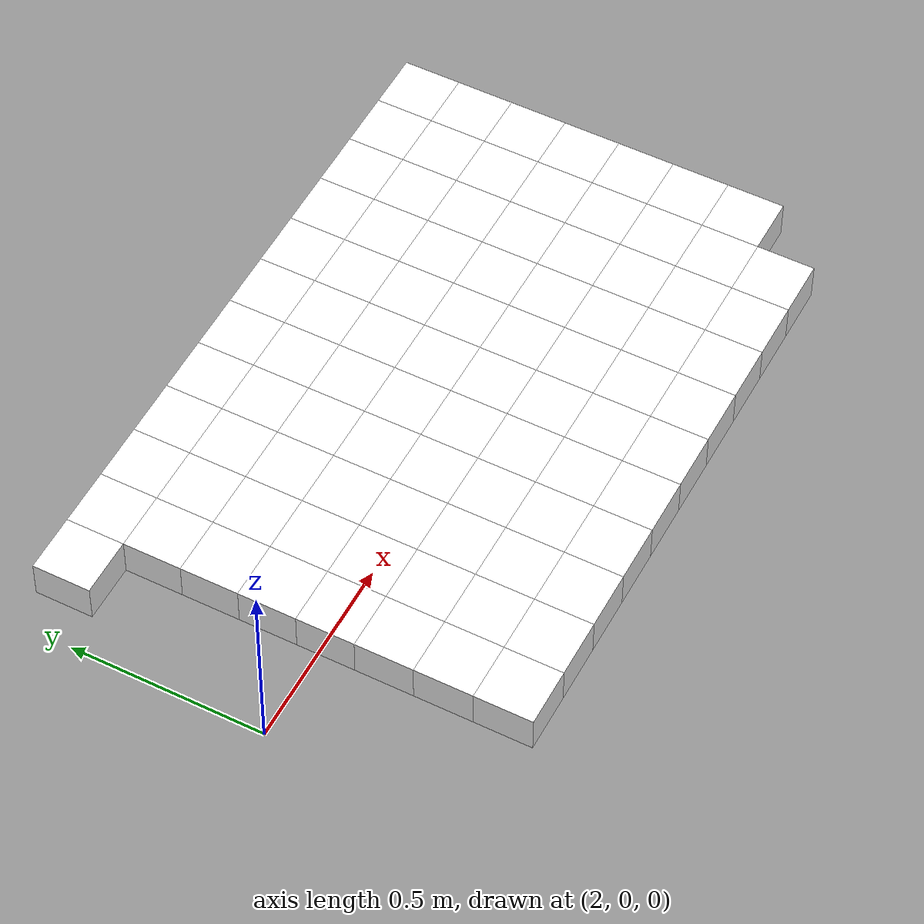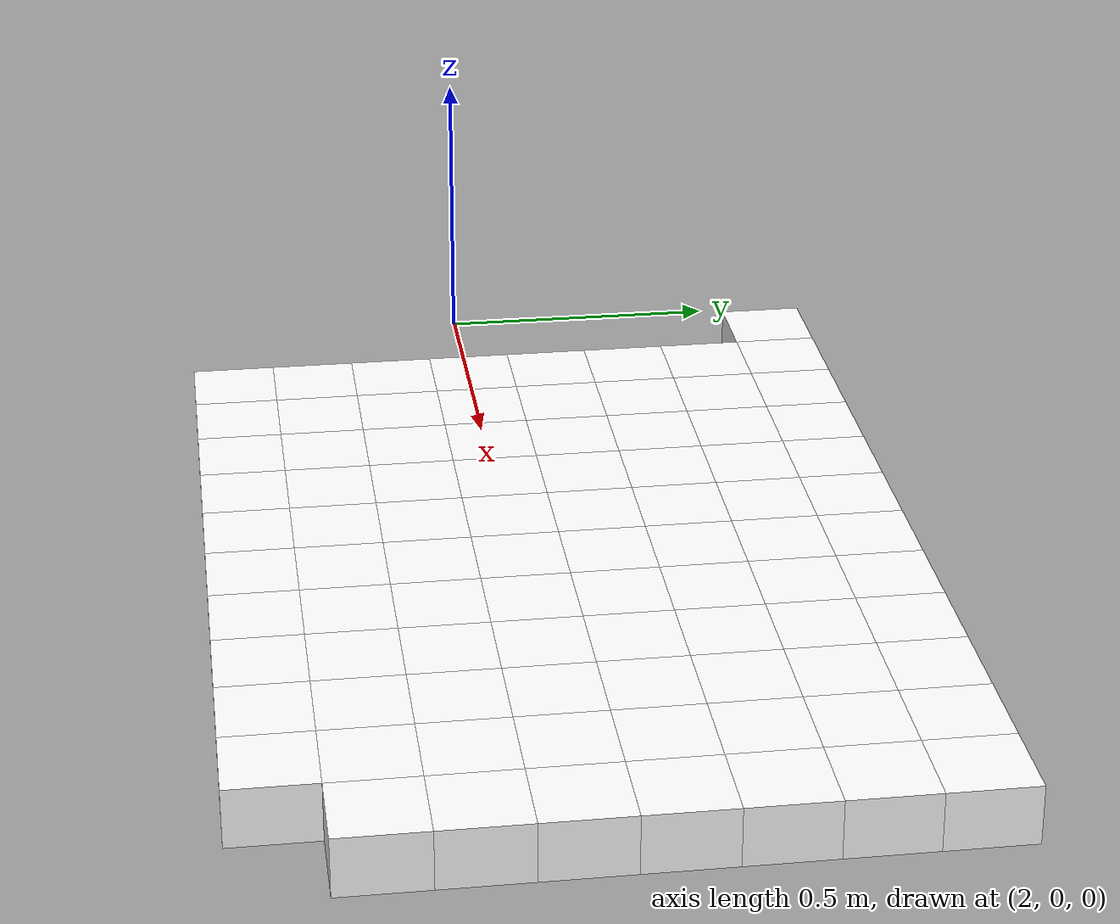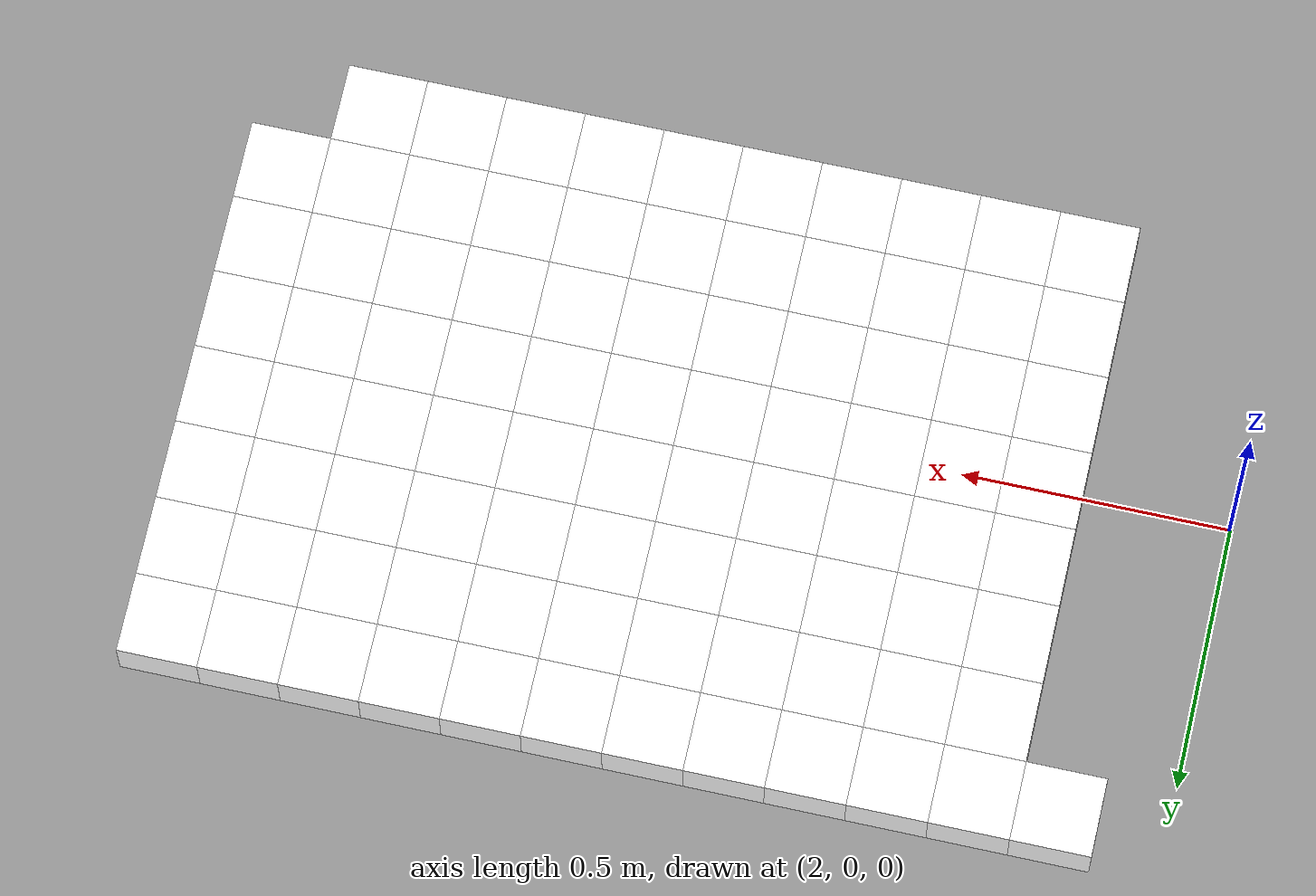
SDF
<sdf version="1.7">
 <world name="default">
  <include><uri>model://sun</uri></include>
  <model name="static_environment">
   <static>true</static>
   <link name="region_560">
    <pose>2.199999983373231 0.5996262823847954 0.0 0.0 0.0 4.7123</pose>
    <collision name="region_560_collision">
     <geometry><box><size>0.15 0.15 0.1</size></box></geometry>
     <surface><friction><ode><mu>1.0</mu><mu2>1.0</mu2></ode></friction></surface>
    </collision>
    <visual name="region_560_visual">
     <geometry><box><size>0.15 0.15 0.1</size></box></geometry>
     <material><ambient>1.0 1.0 1.0 1.0</ambient><diffuse>1.0 1.0 1.0 1.0</diffuse></material>
    </visual>
   </link>
   <link name="region_580">
    <pose>2.3499999827794182 0.5996129353271096 0.0 0.0 0.0 4.7123</pose>
    <collision name="region_580_collision">
     <geometry><box><size>0.15 0.15 0.1</size></box></geometry>
     <surface><friction><ode><mu>1.0</mu><mu2>1.0</mu2></ode></friction></surface>
    </collision>
    <visual name="region_580_visual">
     <geometry><box><size>0.15 0.15 0.1</size></box></geometry>
     <material><ambient>1.0 1.0 1.0 1.0</ambient><diffuse>1.0 1.0 1.0 1.0</diffuse></material>
    </visual>
   </link>
   <link name="region_581">
    <pose>2.3499866357217325 0.4496129359209228 0.0 0.0 0.0 4.7123</pose>
    <collision name="region_581_collision">
     <geometry><box><size>0.15 0.15 0.1</size></box></geometry>
     <surface><friction><ode><mu>1.0</mu><mu2>1.0</mu2></ode></friction></surface>
    </collision>
    <visual name="region_581_visual">
     <geometry><box><size>0.15 0.15 0.1</size></box></geometry>
     <material><ambient>1.0 1.0 1.0 1.0</ambient><diffuse>1.0 1.0 1.0 1.0</diffuse></material>
    </visual>
   </link>
   <link name="region_582">
    <pose>2.3499732886640468 0.2996129365147359 0.0 0.0 0.0 4.7123</pose>
    <collision name="region_582_collision">
     <geometry><box><size>0.15 0.15 0.1</size></box></geometry>
     <surface><friction><ode><mu>1.0</mu><mu2>1.0</mu2></ode></friction></surface>
    </collision>
    <visual name="region_582_visual">
     <geometry><box><size>0.15 0.15 0.1</size></box></geometry>
     <material><ambient>1.0 1.0 1.0 1.0</ambient><diffuse>1.0 1.0 1.0 1.0</diffuse></material>
    </visual>
   </link>
   <link name="region_583">
    <pose>2.349959941606361 0.14961293710854912 0.0 0.0 0.0 4.7123</pose>
    <collision name="region_583_collision">
     <geometry><box><size>0.15 0.15 0.1</size></box></geometry>
     <surface><friction><ode><mu>1.0</mu><mu2>1.0</mu2></ode></friction></surface>
    </collision>
    <visual name="region_583_visual">
     <geometry><box><size>0.15 0.15 0.1</size></box></geometry>
     <material><ambient>1.0 1.0 1.0 1.0</ambient><diffuse>1.0 1.0 1.0 1.0</diffuse></material>
    </visual>
   </link>
   <link name="region_584">
    <pose>2.3499465945486744 -0.00038706229763774136 0.0 0.0 0.0 4.7123</pose>
    <collision name="region_584_collision">
     <geometry><box><size>0.15 0.15 0.1</size></box></geometry>
     <surface><friction><ode><mu>1.0</mu><mu2>1.0</mu2></ode></friction></surface>
    </collision>
    <visual name="region_584_visual">
     <geometry><box><size>0.15 0.15 0.1</size></box></geometry>
     <material><ambient>1.0 1.0 1.0 1.0</ambient><diffuse>1.0 1.0 1.0 1.0</diffuse></material>
    </visual>
   </link>
   <link name="region_585">
    <pose>2.3499332474909886 -0.15038706170382454 0.0 0.0 0.0 4.7123</pose>
    <collision name="region_585_collision">
     <geometry><box><size>0.15 0.15 0.1</size></box></geometry>
     <surface><friction><ode><mu>1.0</mu><mu2>1.0</mu2></ode></friction></surface>
    </collision>
    <visual name="region_585_visual">
     <geometry><box><size>0.15 0.15 0.1</size></box></geometry>
     <material><ambient>1.0 1.0 1.0 1.0</ambient><diffuse>1.0 1.0 1.0 1.0</diffuse></material>
    </visual>
   </link>
   <link name="region_586">
    <pose>2.349919900433303 -0.30038706111001146 0.0 0.0 0.0 4.7123</pose>
    <collision name="region_586_collision">
     <geometry><box><size>0.15 0.15 0.1</size></box></geometry>
     <surface><friction><ode><mu>1.0</mu><mu2>1.0</mu2></ode></friction></surface>
    </collision>
    <visual name="region_586_visual">
     <geometry><box><size>0.15 0.15 0.1</size></box></geometry>
     <material><ambient>1.0 1.0 1.0 1.0</ambient><diffuse>1.0 1.0 1.0 1.0</diffuse></material>
    </visual>
   </link>
   <link name="region_587">
    <pose>2.349906553375617 -0.4503870605161985 0.0 0.0 0.0 4.7123</pose>
    <collision name="region_587_collision">
     <geometry><box><size>0.15 0.15 0.1</size></box></geometry>
     <surface><friction><ode><mu>1.0</mu><mu2>1.0</mu2></ode></friction></surface>
    </collision>
    <visual name="region_587_visual">
     <geometry><box><size>0.15 0.15 0.1</size></box></geometry>
     <material><ambient>1.0 1.0 1.0 1.0</ambient><diffuse>1.0 1.0 1.0 1.0</diffuse></material>
    </visual>
   </link>
   <link name="region_600">
    <pose>2.4999999821856047 0.5995995882694237 0.0 0.0 0.0 4.7123</pose>
    <collision name="region_600_collision">
     <geometry><box><size>0.15 0.15 0.1</size></box></geometry>
     <surface><friction><ode><mu>1.0</mu><mu2>1.0</mu2></ode></friction></surface>
    </collision>
    <visual name="region_600_visual">
     <geometry><box><size>0.15 0.15 0.1</size></box></geometry>
     <material><ambient>1.0 1.0 1.0 1.0</ambient><diffuse>1.0 1.0 1.0 1.0</diffuse></material>
    </visual>
   </link>
   <link name="region_601">
    <pose>2.499986635127919 0.44959958886323687 0.0 0.0 0.0 4.7123</pose>
    <collision name="region_601_collision">
     <geometry><box><size>0.15 0.15 0.1</size></box></geometry>
     <surface><friction><ode><mu>1.0</mu><mu2>1.0</mu2></ode></friction></surface>
    </collision>
    <visual name="region_601_visual">
     <geometry><box><size>0.15 0.15 0.1</size></box></geometry>
     <material><ambient>1.0 1.0 1.0 1.0</ambient><diffuse>1.0 1.0 1.0 1.0</diffuse></material>
    </visual>
   </link>
   <link name="region_602">
    <pose>2.4999732880702332 0.29959958945705006 0.0 0.0 0.0 4.7123</pose>
    <collision name="region_602_collision">
     <geometry><box><size>0.15 0.15 0.1</size></box></geometry>
     <surface><friction><ode><mu>1.0</mu><mu2>1.0</mu2></ode></friction></surface>
    </collision>
    <visual name="region_602_visual">
     <geometry><box><size>0.15 0.15 0.1</size></box></geometry>
     <material><ambient>1.0 1.0 1.0 1.0</ambient><diffuse>1.0 1.0 1.0 1.0</diffuse></material>
    </visual>
   </link>
   <link name="region_603">
    <pose>2.4999599410125475 0.14959959005086326 0.0 0.0 0.0 4.7123</pose>
    <collision name="region_603_collision">
     <geometry><box><size>0.15 0.15 0.1</size></box></geometry>
     <surface><friction><ode><mu>1.0</mu><mu2>1.0</mu2></ode></friction></surface>
    </collision>
    <visual name="region_603_visual">
     <geometry><box><size>0.15 0.15 0.1</size></box></geometry>
     <material><ambient>1.0 1.0 1.0 1.0</ambient><diffuse>1.0 1.0 1.0 1.0</diffuse></material>
    </visual>
   </link>
   <link name="region_604">
    <pose>2.499946593954861 -0.00040040935532359434 0.0 0.0 0.0 4.7123</pose>
    <collision name="region_604_collision">
     <geometry><box><size>0.15 0.15 0.1</size></box></geometry>
     <surface><friction><ode><mu>1.0</mu><mu2>1.0</mu2></ode></friction></surface>
    </collision>
    <visual name="region_604_visual">
     <geometry><box><size>0.15 0.15 0.1</size></box></geometry>
     <material><ambient>1.0 1.0 1.0 1.0</ambient><diffuse>1.0 1.0 1.0 1.0</diffuse></material>
    </visual>
   </link>
   <link name="region_605">
    <pose>2.499933246897175 -0.1504004087615104 0.0 0.0 0.0 4.7123</pose>
    <collision name="region_605_collision">
     <geometry><box><size>0.15 0.15 0.1</size></box></geometry>
     <surface><friction><ode><mu>1.0</mu><mu2>1.0</mu2></ode></friction></surface>
    </collision>
    <visual name="region_605_visual">
     <geometry><box><size>0.15 0.15 0.1</size></box></geometry>
     <material><ambient>1.0 1.0 1.0 1.0</ambient><diffuse>1.0 1.0 1.0 1.0</diffuse></material>
    </visual>
   </link>
   <link name="region_606">
    <pose>2.4999198998394894 -0.3004004081676973 0.0 0.0 0.0 4.7123</pose>
    <collision name="region_606_collision">
     <geometry><box><size>0.15 0.15 0.1</size></box></geometry>
     <surface><friction><ode><mu>1.0</mu><mu2>1.0</mu2></ode></friction></surface>
    </collision>
    <visual name="region_606_visual">
     <geometry><box><size>0.15 0.15 0.1</size></box></geometry>
     <material><ambient>1.0 1.0 1.0 1.0</ambient><diffuse>1.0 1.0 1.0 1.0</diffuse></material>
    </visual>
   </link>
   <link name="region_607">
    <pose>2.4999065527818036 -0.4504004075738842 0.0 0.0 0.0 4.7123</pose>
    <collision name="region_607_collision">
     <geometry><box><size>0.15 0.15 0.1</size></box></geometry>
     <surface><friction><ode><mu>1.0</mu><mu2>1.0</mu2></ode></friction></surface>
    </collision>
    <visual name="region_607_visual">
     <geometry><box><size>0.15 0.15 0.1</size></box></geometry>
     <material><ambient>1.0 1.0 1.0 1.0</ambient><diffuse>1.0 1.0 1.0 1.0</diffuse></material>
    </visual>
   </link>
   <link name="region_620">
    <pose>2.649999981591792 0.5995862412117379 0.0 0.0 0.0 4.7123</pose>
    <collision name="region_620_collision">
     <geometry><box><size>0.15 0.15 0.1</size></box></geometry>
     <surface><friction><ode><mu>1.0</mu><mu2>1.0</mu2></ode></friction></surface>
    </collision>
    <visual name="region_620_visual">
     <geometry><box><size>0.15 0.15 0.1</size></box></geometry>
     <material><ambient>1.0 1.0 1.0 1.0</ambient><diffuse>1.0 1.0 1.0 1.0</diffuse></material>
    </visual>
   </link>
   <link name="region_621">
    <pose>2.6499866345341063 0.44958624180555096 0.0 0.0 0.0 4.7123</pose>
    <collision name="region_621_collision">
     <geometry><box><size>0.15 0.15 0.1</size></box></geometry>
     <surface><friction><ode><mu>1.0</mu><mu2>1.0</mu2></ode></friction></surface>
    </collision>
    <visual name="region_621_visual">
     <geometry><box><size>0.15 0.15 0.1</size></box></geometry>
     <material><ambient>1.0 1.0 1.0 1.0</ambient><diffuse>1.0 1.0 1.0 1.0</diffuse></material>
    </visual>
   </link>
   <link name="region_622">
    <pose>2.6499732874764206 0.29958624239936416 0.0 0.0 0.0 4.7123</pose>
    <collision name="region_622_collision">
     <geometry><box><size>0.15 0.15 0.1</size></box></geometry>
     <surface><friction><ode><mu>1.0</mu><mu2>1.0</mu2></ode></friction></surface>
    </collision>
    <visual name="region_622_visual">
     <geometry><box><size>0.15 0.15 0.1</size></box></geometry>
     <material><ambient>1.0 1.0 1.0 1.0</ambient><diffuse>1.0 1.0 1.0 1.0</diffuse></material>
    </visual>
   </link>
   <link name="region_623">
    <pose>2.649959940418735 0.14958624299317735 0.0 0.0 0.0 4.7123</pose>
    <collision name="region_623_collision">
     <geometry><box><size>0.15 0.15 0.1</size></box></geometry>
     <surface><friction><ode><mu>1.0</mu><mu2>1.0</mu2></ode></friction></surface>
    </collision>
    <visual name="region_623_visual">
     <geometry><box><size>0.15 0.15 0.1</size></box></geometry>
     <material><ambient>1.0 1.0 1.0 1.0</ambient><diffuse>1.0 1.0 1.0 1.0</diffuse></material>
    </visual>
   </link>
   <link name="region_624">
    <pose>2.649946593361048 -0.0004137564130094473 0.0 0.0 0.0 4.7123</pose>
    <collision name="region_624_collision">
     <geometry><box><size>0.15 0.15 0.1</size></box></geometry>
     <surface><friction><ode><mu>1.0</mu><mu2>1.0</mu2></ode></friction></surface>
    </collision>
    <visual name="region_624_visual">
     <geometry><box><size>0.15 0.15 0.1</size></box></geometry>
     <material><ambient>1.0 1.0 1.0 1.0</ambient><diffuse>1.0 1.0 1.0 1.0</diffuse></material>
    </visual>
   </link>
   <link name="region_625">
    <pose>2.6499332463033625 -0.15041375581919625 0.0 0.0 0.0 4.7123</pose>
    <collision name="region_625_collision">
     <geometry><box><size>0.15 0.15 0.1</size></box></geometry>
     <surface><friction><ode><mu>1.0</mu><mu2>1.0</mu2></ode></friction></surface>
    </collision>
    <visual name="region_625_visual">
     <geometry><box><size>0.15 0.15 0.1</size></box></geometry>
     <material><ambient>1.0 1.0 1.0 1.0</ambient><diffuse>1.0 1.0 1.0 1.0</diffuse></material>
    </visual>
   </link>
   <link name="region_626">
    <pose>2.6499198992456767 -0.30041375522538316 0.0 0.0 0.0 4.7123</pose>
    <collision name="region_626_collision">
     <geometry><box><size>0.15 0.15 0.1</size></box></geometry>
     <surface><friction><ode><mu>1.0</mu><mu2>1.0</mu2></ode></friction></surface>
    </collision>
    <visual name="region_626_visual">
     <geometry><box><size>0.15 0.15 0.1</size></box></geometry>
     <material><ambient>1.0 1.0 1.0 1.0</ambient><diffuse>1.0 1.0 1.0 1.0</diffuse></material>
    </visual>
   </link>
   <link name="region_627">
    <pose>2.649906552187991 -0.4504137546315702 0.0 0.0 0.0 4.7123</pose>
    <collision name="region_627_collision">
     <geometry><box><size>0.15 0.15 0.1</size></box></geometry>
     <surface><friction><ode><mu>1.0</mu><mu2>1.0</mu2></ode></friction></surface>
    </collision>
    <visual name="region_627_visual">
     <geometry><box><size>0.15 0.15 0.1</size></box></geometry>
     <material><ambient>1.0 1.0 1.0 1.0</ambient><diffuse>1.0 1.0 1.0 1.0</diffuse></material>
    </visual>
   </link>
   <link name="region_640">
    <pose>2.7999999809979794 0.5995728941540519 0.0 0.0 0.0 4.7123</pose>
    <collision name="region_640_collision">
     <geometry><box><size>0.15 0.15 0.1</size></box></geometry>
     <surface><friction><ode><mu>1.0</mu><mu2>1.0</mu2></ode></friction></surface>
    </collision>
    <visual name="region_640_visual">
     <geometry><box><size>0.15 0.15 0.1</size></box></geometry>
     <material><ambient>1.0 1.0 1.0 1.0</ambient><diffuse>1.0 1.0 1.0 1.0</diffuse></material>
    </visual>
   </link>
   <link name="region_641">
    <pose>2.7999866339402937 0.4495728947478651 0.0 0.0 0.0 4.7123</pose>
    <collision name="region_641_collision">
     <geometry><box><size>0.15 0.15 0.1</size></box></geometry>
     <surface><friction><ode><mu>1.0</mu><mu2>1.0</mu2></ode></friction></surface>
    </collision>
    <visual name="region_641_visual">
     <geometry><box><size>0.15 0.15 0.1</size></box></geometry>
     <material><ambient>1.0 1.0 1.0 1.0</ambient><diffuse>1.0 1.0 1.0 1.0</diffuse></material>
    </visual>
   </link>
   <link name="region_642">
    <pose>2.799973286882608 0.2995728953416783 0.0 0.0 0.0 4.7123</pose>
    <collision name="region_642_collision">
     <geometry><box><size>0.15 0.15 0.1</size></box></geometry>
     <surface><friction><ode><mu>1.0</mu><mu2>1.0</mu2></ode></friction></surface>
    </collision>
    <visual name="region_642_visual">
     <geometry><box><size>0.15 0.15 0.1</size></box></geometry>
     <material><ambient>1.0 1.0 1.0 1.0</ambient><diffuse>1.0 1.0 1.0 1.0</diffuse></material>
    </visual>
   </link>
   <link name="region_643">
    <pose>2.799959939824922 0.1495728959354915 0.0 0.0 0.0 4.7123</pose>
    <collision name="region_643_collision">
     <geometry><box><size>0.15 0.15 0.1</size></box></geometry>
     <surface><friction><ode><mu>1.0</mu><mu2>1.0</mu2></ode></friction></surface>
    </collision>
    <visual name="region_643_visual">
     <geometry><box><size>0.15 0.15 0.1</size></box></geometry>
     <material><ambient>1.0 1.0 1.0 1.0</ambient><diffuse>1.0 1.0 1.0 1.0</diffuse></material>
    </visual>
   </link>
   <link name="region_644">
    <pose>2.7999465927672356 -0.0004271034706954113 0.0 0.0 0.0 4.7123</pose>
    <collision name="region_644_collision">
     <geometry><box><size>0.15 0.15 0.1</size></box></geometry>
     <surface><friction><ode><mu>1.0</mu><mu2>1.0</mu2></ode></friction></surface>
    </collision>
    <visual name="region_644_visual">
     <geometry><box><size>0.15 0.15 0.1</size></box></geometry>
     <material><ambient>1.0 1.0 1.0 1.0</ambient><diffuse>1.0 1.0 1.0 1.0</diffuse></material>
    </visual>
   </link>
   <link name="region_645">
    <pose>2.79993324570955 -0.1504271028768822 0.0 0.0 0.0 4.7123</pose>
    <collision name="region_645_collision">
     <geometry><box><size>0.15 0.15 0.1</size></box></geometry>
     <surface><friction><ode><mu>1.0</mu><mu2>1.0</mu2></ode></friction></surface>
    </collision>
    <visual name="region_645_visual">
     <geometry><box><size>0.15 0.15 0.1</size></box></geometry>
     <material><ambient>1.0 1.0 1.0 1.0</ambient><diffuse>1.0 1.0 1.0 1.0</diffuse></material>
    </visual>
   </link>
   <link name="region_646">
    <pose>2.799919898651864 -0.3004271022830691 0.0 0.0 0.0 4.7123</pose>
    <collision name="region_646_collision">
     <geometry><box><size>0.15 0.15 0.1</size></box></geometry>
     <surface><friction><ode><mu>1.0</mu><mu2>1.0</mu2></ode></friction></surface>
    </collision>
    <visual name="region_646_visual">
     <geometry><box><size>0.15 0.15 0.1</size></box></geometry>
     <material><ambient>1.0 1.0 1.0 1.0</ambient><diffuse>1.0 1.0 1.0 1.0</diffuse></material>
    </visual>
   </link>
   <link name="region_647">
    <pose>2.7999065515941783 -0.4504271016892559 0.0 0.0 0.0 4.7123</pose>
    <collision name="region_647_collision">
     <geometry><box><size>0.15 0.15 0.1</size></box></geometry>
     <surface><friction><ode><mu>1.0</mu><mu2>1.0</mu2></ode></friction></surface>
    </collision>
    <visual name="region_647_visual">
     <geometry><box><size>0.15 0.15 0.1</size></box></geometry>
     <material><ambient>1.0 1.0 1.0 1.0</ambient><diffuse>1.0 1.0 1.0 1.0</diffuse></material>
    </visual>
   </link>
   <link name="region_660">
    <pose>2.9499999804041668 0.599559547096366 0.0 0.0 0.0 4.7123</pose>
    <collision name="region_660_collision">
     <geometry><box><size>0.15 0.15 0.1</size></box></geometry>
     <surface><friction><ode><mu>1.0</mu><mu2>1.0</mu2></ode></friction></surface>
    </collision>
    <visual name="region_660_visual">
     <geometry><box><size>0.15 0.15 0.1</size></box></geometry>
     <material><ambient>1.0 1.0 1.0 1.0</ambient><diffuse>1.0 1.0 1.0 1.0</diffuse></material>
    </visual>
   </link>
   <link name="region_661">
    <pose>2.949986633346481 0.44955954769017925 0.0 0.0 0.0 4.7123</pose>
    <collision name="region_661_collision">
     <geometry><box><size>0.15 0.15 0.1</size></box></geometry>
     <surface><friction><ode><mu>1.0</mu><mu2>1.0</mu2></ode></friction></surface>
    </collision>
    <visual name="region_661_visual">
     <geometry><box><size>0.15 0.15 0.1</size></box></geometry>
     <material><ambient>1.0 1.0 1.0 1.0</ambient><diffuse>1.0 1.0 1.0 1.0</diffuse></material>
    </visual>
   </link>
   <link name="region_662">
    <pose>2.9499732862887953 0.2995595482839924 0.0 0.0 0.0 4.7123</pose>
    <collision name="region_662_collision">
     <geometry><box><size>0.15 0.15 0.1</size></box></geometry>
     <surface><friction><ode><mu>1.0</mu><mu2>1.0</mu2></ode></friction></surface>
    </collision>
    <visual name="region_662_visual">
     <geometry><box><size>0.15 0.15 0.1</size></box></geometry>
     <material><ambient>1.0 1.0 1.0 1.0</ambient><diffuse>1.0 1.0 1.0 1.0</diffuse></material>
    </visual>
   </link>
   <link name="region_663">
    <pose>2.9499599392311096 0.1495595488778056 0.0 0.0 0.0 4.7123</pose>
    <collision name="region_663_collision">
     <geometry><box><size>0.15 0.15 0.1</size></box></geometry>
     <surface><friction><ode><mu>1.0</mu><mu2>1.0</mu2></ode></friction></surface>
    </collision>
    <visual name="region_663_visual">
     <geometry><box><size>0.15 0.15 0.1</size></box></geometry>
     <material><ambient>1.0 1.0 1.0 1.0</ambient><diffuse>1.0 1.0 1.0 1.0</diffuse></material>
    </visual>
   </link>
   <link name="region_664">
    <pose>2.949946592173423 -0.0004404505283812643 0.0 0.0 0.0 4.7123</pose>
    <collision name="region_664_collision">
     <geometry><box><size>0.15 0.15 0.1</size></box></geometry>
     <surface><friction><ode><mu>1.0</mu><mu2>1.0</mu2></ode></friction></surface>
    </collision>
    <visual name="region_664_visual">
     <geometry><box><size>0.15 0.15 0.1</size></box></geometry>
     <material><ambient>1.0 1.0 1.0 1.0</ambient><diffuse>1.0 1.0 1.0 1.0</diffuse></material>
    </visual>
   </link>
   <link name="region_665">
    <pose>2.949933245115737 -0.15044044993456807 0.0 0.0 0.0 4.7123</pose>
    <collision name="region_665_collision">
     <geometry><box><size>0.15 0.15 0.1</size></box></geometry>
     <surface><friction><ode><mu>1.0</mu><mu2>1.0</mu2></ode></friction></surface>
    </collision>
    <visual name="region_665_visual">
     <geometry><box><size>0.15 0.15 0.1</size></box></geometry>
     <material><ambient>1.0 1.0 1.0 1.0</ambient><diffuse>1.0 1.0 1.0 1.0</diffuse></material>
    </visual>
   </link>
   <link name="region_666">
    <pose>2.9499198980580514 -0.300440449340755 0.0 0.0 0.0 4.7123</pose>
    <collision name="region_666_collision">
     <geometry><box><size>0.15 0.15 0.1</size></box></geometry>
     <surface><friction><ode><mu>1.0</mu><mu2>1.0</mu2></ode></friction></surface>
    </collision>
    <visual name="region_666_visual">
     <geometry><box><size>0.15 0.15 0.1</size></box></geometry>
     <material><ambient>1.0 1.0 1.0 1.0</ambient><diffuse>1.0 1.0 1.0 1.0</diffuse></material>
    </visual>
   </link>
   <link name="region_667">
    <pose>2.9499065510003657 -0.4504404487469419 0.0 0.0 0.0 4.7123</pose>
    <collision name="region_667_collision">
     <geometry><box><size>0.15 0.15 0.1</size></box></geometry>
     <surface><friction><ode><mu>1.0</mu><mu2>1.0</mu2></ode></friction></surface>
    </collision>
    <visual name="region_667_visual">
     <geometry><box><size>0.15 0.15 0.1</size></box></geometry>
     <material><ambient>1.0 1.0 1.0 1.0</ambient><diffuse>1.0 1.0 1.0 1.0</diffuse></material>
    </visual>
   </link>
   <link name="region_680">
    <pose>3.099999979810354 0.5995462000386802 0.0 0.0 0.0 4.7123</pose>
    <collision name="region_680_collision">
     <geometry><box><size>0.15 0.15 0.1</size></box></geometry>
     <surface><friction><ode><mu>1.0</mu><mu2>1.0</mu2></ode></friction></surface>
    </collision>
    <visual name="region_680_visual">
     <geometry><box><size>0.15 0.15 0.1</size></box></geometry>
     <material><ambient>1.0 1.0 1.0 1.0</ambient><diffuse>1.0 1.0 1.0 1.0</diffuse></material>
    </visual>
   </link>
   <link name="region_681">
    <pose>3.0999866327526684 0.4495462006324934 0.0 0.0 0.0 4.7123</pose>
    <collision name="region_681_collision">
     <geometry><box><size>0.15 0.15 0.1</size></box></geometry>
     <surface><friction><ode><mu>1.0</mu><mu2>1.0</mu2></ode></friction></surface>
    </collision>
    <visual name="region_681_visual">
     <geometry><box><size>0.15 0.15 0.1</size></box></geometry>
     <material><ambient>1.0 1.0 1.0 1.0</ambient><diffuse>1.0 1.0 1.0 1.0</diffuse></material>
    </visual>
   </link>
   <link name="region_682">
    <pose>3.0999732856949826 0.29954620122630654 0.0 0.0 0.0 4.7123</pose>
    <collision name="region_682_collision">
     <geometry><box><size>0.15 0.15 0.1</size></box></geometry>
     <surface><friction><ode><mu>1.0</mu><mu2>1.0</mu2></ode></friction></surface>
    </collision>
    <visual name="region_682_visual">
     <geometry><box><size>0.15 0.15 0.1</size></box></geometry>
     <material><ambient>1.0 1.0 1.0 1.0</ambient><diffuse>1.0 1.0 1.0 1.0</diffuse></material>
    </visual>
   </link>
   <link name="region_683">
    <pose>3.099959938637297 0.14954620182011974 0.0 0.0 0.0 4.7123</pose>
    <collision name="region_683_collision">
     <geometry><box><size>0.15 0.15 0.1</size></box></geometry>
     <surface><friction><ode><mu>1.0</mu><mu2>1.0</mu2></ode></friction></surface>
    </collision>
    <visual name="region_683_visual">
     <geometry><box><size>0.15 0.15 0.1</size></box></geometry>
     <material><ambient>1.0 1.0 1.0 1.0</ambient><diffuse>1.0 1.0 1.0 1.0</diffuse></material>
    </visual>
   </link>
   <link name="region_684">
    <pose>3.0999465915796103 -0.0004537975860671173 0.0 0.0 0.0 4.7123</pose>
    <collision name="region_684_collision">
     <geometry><box><size>0.15 0.15 0.1</size></box></geometry>
     <surface><friction><ode><mu>1.0</mu><mu2>1.0</mu2></ode></friction></surface>
    </collision>
    <visual name="region_684_visual">
     <geometry><box><size>0.15 0.15 0.1</size></box></geometry>
     <material><ambient>1.0 1.0 1.0 1.0</ambient><diffuse>1.0 1.0 1.0 1.0</diffuse></material>
    </visual>
   </link>
   <link name="region_685">
    <pose>3.0999332445219245 -0.15045379699225392 0.0 0.0 0.0 4.7123</pose>
    <collision name="region_685_collision">
     <geometry><box><size>0.15 0.15 0.1</size></box></geometry>
     <surface><friction><ode><mu>1.0</mu><mu2>1.0</mu2></ode></friction></surface>
    </collision>
    <visual name="region_685_visual">
     <geometry><box><size>0.15 0.15 0.1</size></box></geometry>
     <material><ambient>1.0 1.0 1.0 1.0</ambient><diffuse>1.0 1.0 1.0 1.0</diffuse></material>
    </visual>
   </link>
   <link name="region_686">
    <pose>3.099919897464239 -0.30045379639844083 0.0 0.0 0.0 4.7123</pose>
    <collision name="region_686_collision">
     <geometry><box><size>0.15 0.15 0.1</size></box></geometry>
     <surface><friction><ode><mu>1.0</mu><mu2>1.0</mu2></ode></friction></surface>
    </collision>
    <visual name="region_686_visual">
     <geometry><box><size>0.15 0.15 0.1</size></box></geometry>
     <material><ambient>1.0 1.0 1.0 1.0</ambient><diffuse>1.0 1.0 1.0 1.0</diffuse></material>
    </visual>
   </link>
   <link name="region_687">
    <pose>3.099906550406553 -0.45045379580462785 0.0 0.0 0.0 4.7123</pose>
    <collision name="region_687_collision">
     <geometry><box><size>0.15 0.15 0.1</size></box></geometry>
     <surface><friction><ode><mu>1.0</mu><mu2>1.0</mu2></ode></friction></surface>
    </collision>
    <visual name="region_687_visual">
     <geometry><box><size>0.15 0.15 0.1</size></box></geometry>
     <material><ambient>1.0 1.0 1.0 1.0</ambient><diffuse>1.0 1.0 1.0 1.0</diffuse></material>
    </visual>
   </link>
   <link name="region_700">
    <pose>3.2499999792165406 0.5995328529809943 0.0 0.0 0.0 4.7123</pose>
    <collision name="region_700_collision">
     <geometry><box><size>0.15 0.15 0.1</size></box></geometry>
     <surface><friction><ode><mu>1.0</mu><mu2>1.0</mu2></ode></friction></surface>
    </collision>
    <visual name="region_700_visual">
     <geometry><box><size>0.15 0.15 0.1</size></box></geometry>
     <material><ambient>1.0 1.0 1.0 1.0</ambient><diffuse>1.0 1.0 1.0 1.0</diffuse></material>
    </visual>
   </link>
   <link name="region_701">
    <pose>3.249986632158855 0.4495328535748075 0.0 0.0 0.0 4.7123</pose>
    <collision name="region_701_collision">
     <geometry><box><size>0.15 0.15 0.1</size></box></geometry>
     <surface><friction><ode><mu>1.0</mu><mu2>1.0</mu2></ode></friction></surface>
    </collision>
    <visual name="region_701_visual">
     <geometry><box><size>0.15 0.15 0.1</size></box></geometry>
     <material><ambient>1.0 1.0 1.0 1.0</ambient><diffuse>1.0 1.0 1.0 1.0</diffuse></material>
    </visual>
   </link>
   <link name="region_702">
    <pose>3.249973285101169 0.29953285416862063 0.0 0.0 0.0 4.7123</pose>
    <collision name="region_702_collision">
     <geometry><box><size>0.15 0.15 0.1</size></box></geometry>
     <surface><friction><ode><mu>1.0</mu><mu2>1.0</mu2></ode></friction></surface>
    </collision>
    <visual name="region_702_visual">
     <geometry><box><size>0.15 0.15 0.1</size></box></geometry>
     <material><ambient>1.0 1.0 1.0 1.0</ambient><diffuse>1.0 1.0 1.0 1.0</diffuse></material>
    </visual>
   </link>
   <link name="region_703">
    <pose>3.2499599380434834 0.14953285476243383 0.0 0.0 0.0 4.7123</pose>
    <collision name="region_703_collision">
     <geometry><box><size>0.15 0.15 0.1</size></box></geometry>
     <surface><friction><ode><mu>1.0</mu><mu2>1.0</mu2></ode></friction></surface>
    </collision>
    <visual name="region_703_visual">
     <geometry><box><size>0.15 0.15 0.1</size></box></geometry>
     <material><ambient>1.0 1.0 1.0 1.0</ambient><diffuse>1.0 1.0 1.0 1.0</diffuse></material>
    </visual>
   </link>
   <link name="region_704">
    <pose>3.2499465909857967 -0.00046714464375297027 0.0 0.0 0.0 4.7123</pose>
    <collision name="region_704_collision">
     <geometry><box><size>0.15 0.15 0.1</size></box></geometry>
     <surface><friction><ode><mu>1.0</mu><mu2>1.0</mu2></ode></friction></surface>
    </collision>
    <visual name="region_704_visual">
     <geometry><box><size>0.15 0.15 0.1</size></box></geometry>
     <material><ambient>1.0 1.0 1.0 1.0</ambient><diffuse>1.0 1.0 1.0 1.0</diffuse></material>
    </visual>
   </link>
   <link name="region_705">
    <pose>3.249933243928111 -0.15046714404993977 0.0 0.0 0.0 4.7123</pose>
    <collision name="region_705_collision">
     <geometry><box><size>0.15 0.15 0.1</size></box></geometry>
     <surface><friction><ode><mu>1.0</mu><mu2>1.0</mu2></ode></friction></surface>
    </collision>
    <visual name="region_705_visual">
     <geometry><box><size>0.15 0.15 0.1</size></box></geometry>
     <material><ambient>1.0 1.0 1.0 1.0</ambient><diffuse>1.0 1.0 1.0 1.0</diffuse></material>
    </visual>
   </link>
   <link name="region_706">
    <pose>3.2499198968704253 -0.3004671434561267 0.0 0.0 0.0 4.7123</pose>
    <collision name="region_706_collision">
     <geometry><box><size>0.15 0.15 0.1</size></box></geometry>
     <surface><friction><ode><mu>1.0</mu><mu2>1.0</mu2></ode></friction></surface>
    </collision>
    <visual name="region_706_visual">
     <geometry><box><size>0.15 0.15 0.1</size></box></geometry>
     <material><ambient>1.0 1.0 1.0 1.0</ambient><diffuse>1.0 1.0 1.0 1.0</diffuse></material>
    </visual>
   </link>
   <link name="region_707">
    <pose>3.2499065498127395 -0.4504671428623136 0.0 0.0 0.0 4.7123</pose>
    <collision name="region_707_collision">
     <geometry><box><size>0.15 0.15 0.1</size></box></geometry>
     <surface><friction><ode><mu>1.0</mu><mu2>1.0</mu2></ode></friction></surface>
    </collision>
    <visual name="region_707_visual">
     <geometry><box><size>0.15 0.15 0.1</size></box></geometry>
     <material><ambient>1.0 1.0 1.0 1.0</ambient><diffuse>1.0 1.0 1.0 1.0</diffuse></material>
    </visual>
   </link>
   <link name="region_720">
    <pose>3.399999978622728 0.5995195059233085 0.0 0.0 0.0 4.7123</pose>
    <collision name="region_720_collision">
     <geometry><box><size>0.15 0.15 0.1</size></box></geometry>
     <surface><friction><ode><mu>1.0</mu><mu2>1.0</mu2></ode></friction></surface>
    </collision>
    <visual name="region_720_visual">
     <geometry><box><size>0.15 0.15 0.1</size></box></geometry>
     <material><ambient>1.0 1.0 1.0 1.0</ambient><diffuse>1.0 1.0 1.0 1.0</diffuse></material>
    </visual>
   </link>
   <link name="region_721">
    <pose>3.399986631565042 0.4495195065171216 0.0 0.0 0.0 4.7123</pose>
    <collision name="region_721_collision">
     <geometry><box><size>0.15 0.15 0.1</size></box></geometry>
     <surface><friction><ode><mu>1.0</mu><mu2>1.0</mu2></ode></friction></surface>
    </collision>
    <visual name="region_721_visual">
     <geometry><box><size>0.15 0.15 0.1</size></box></geometry>
     <material><ambient>1.0 1.0 1.0 1.0</ambient><diffuse>1.0 1.0 1.0 1.0</diffuse></material>
    </visual>
   </link>
   <link name="region_722">
    <pose>3.3999732845073565 0.2995195071109348 0.0 0.0 0.0 4.7123</pose>
    <collision name="region_722_collision">
     <geometry><box><size>0.15 0.15 0.1</size></box></geometry>
     <surface><friction><ode><mu>1.0</mu><mu2>1.0</mu2></ode></friction></surface>
    </collision>
    <visual name="region_722_visual">
     <geometry><box><size>0.15 0.15 0.1</size></box></geometry>
     <material><ambient>1.0 1.0 1.0 1.0</ambient><diffuse>1.0 1.0 1.0 1.0</diffuse></material>
    </visual>
   </link>
   <link name="region_723">
    <pose>3.3999599374496707 0.14951950770474798 0.0 0.0 0.0 4.7123</pose>
    <collision name="region_723_collision">
     <geometry><box><size>0.15 0.15 0.1</size></box></geometry>
     <surface><friction><ode><mu>1.0</mu><mu2>1.0</mu2></ode></friction></surface>
    </collision>
    <visual name="region_723_visual">
     <geometry><box><size>0.15 0.15 0.1</size></box></geometry>
     <material><ambient>1.0 1.0 1.0 1.0</ambient><diffuse>1.0 1.0 1.0 1.0</diffuse></material>
    </visual>
   </link>
   <link name="region_724">
    <pose>3.399946590391984 -0.00048049170143882325 0.0 0.0 0.0 4.7123</pose>
    <collision name="region_724_collision">
     <geometry><box><size>0.15 0.15 0.1</size></box></geometry>
     <surface><friction><ode><mu>1.0</mu><mu2>1.0</mu2></ode></friction></surface>
    </collision>
    <visual name="region_724_visual">
     <geometry><box><size>0.15 0.15 0.1</size></box></geometry>
     <material><ambient>1.0 1.0 1.0 1.0</ambient><diffuse>1.0 1.0 1.0 1.0</diffuse></material>
    </visual>
   </link>
   <link name="region_725">
    <pose>3.3999332433342984 -0.15048049110762562 0.0 0.0 0.0 4.7123</pose>
    <collision name="region_725_collision">
     <geometry><box><size>0.15 0.15 0.1</size></box></geometry>
     <surface><friction><ode><mu>1.0</mu><mu2>1.0</mu2></ode></friction></surface>
    </collision>
    <visual name="region_725_visual">
     <geometry><box><size>0.15 0.15 0.1</size></box></geometry>
     <material><ambient>1.0 1.0 1.0 1.0</ambient><diffuse>1.0 1.0 1.0 1.0</diffuse></material>
    </visual>
   </link>
   <link name="region_726">
    <pose>3.3999198962766126 -0.30048049051381254 0.0 0.0 0.0 4.7123</pose>
    <collision name="region_726_collision">
     <geometry><box><size>0.15 0.15 0.1</size></box></geometry>
     <surface><friction><ode><mu>1.0</mu><mu2>1.0</mu2></ode></friction></surface>
    </collision>
    <visual name="region_726_visual">
     <geometry><box><size>0.15 0.15 0.1</size></box></geometry>
     <material><ambient>1.0 1.0 1.0 1.0</ambient><diffuse>1.0 1.0 1.0 1.0</diffuse></material>
    </visual>
   </link>
   <link name="region_727">
    <pose>3.399906549218927 -0.45048048991999956 0.0 0.0 0.0 4.7123</pose>
    <collision name="region_727_collision">
     <geometry><box><size>0.15 0.15 0.1</size></box></geometry>
     <surface><friction><ode><mu>1.0</mu><mu2>1.0</mu2></ode></friction></surface>
    </collision>
    <visual name="region_727_visual">
     <geometry><box><size>0.15 0.15 0.1</size></box></geometry>
     <material><ambient>1.0 1.0 1.0 1.0</ambient><diffuse>1.0 1.0 1.0 1.0</diffuse></material>
    </visual>
   </link>
   <link name="region_740">
    <pose>3.5499999780289153 0.5995061588656225 0.0 0.0 0.0 4.7123</pose>
    <collision name="region_740_collision">
     <geometry><box><size>0.15 0.15 0.1</size></box></geometry>
     <surface><friction><ode><mu>1.0</mu><mu2>1.0</mu2></ode></friction></surface>
    </collision>
    <visual name="region_740_visual">
     <geometry><box><size>0.15 0.15 0.1</size></box></geometry>
     <material><ambient>1.0 1.0 1.0 1.0</ambient><diffuse>1.0 1.0 1.0 1.0</diffuse></material>
    </visual>
   </link>
   <link name="region_741">
    <pose>3.5499866309712296 0.44950615945943573 0.0 0.0 0.0 4.7123</pose>
    <collision name="region_741_collision">
     <geometry><box><size>0.15 0.15 0.1</size></box></geometry>
     <surface><friction><ode><mu>1.0</mu><mu2>1.0</mu2></ode></friction></surface>
    </collision>
    <visual name="region_741_visual">
     <geometry><box><size>0.15 0.15 0.1</size></box></geometry>
     <material><ambient>1.0 1.0 1.0 1.0</ambient><diffuse>1.0 1.0 1.0 1.0</diffuse></material>
    </visual>
   </link>
   <link name="region_742">
    <pose>3.549973283913544 0.2995061600532489 0.0 0.0 0.0 4.7123</pose>
    <collision name="region_742_collision">
     <geometry><box><size>0.15 0.15 0.1</size></box></geometry>
     <surface><friction><ode><mu>1.0</mu><mu2>1.0</mu2></ode></friction></surface>
    </collision>
    <visual name="region_742_visual">
     <geometry><box><size>0.15 0.15 0.1</size></box></geometry>
     <material><ambient>1.0 1.0 1.0 1.0</ambient><diffuse>1.0 1.0 1.0 1.0</diffuse></material>
    </visual>
   </link>
   <link name="region_743">
    <pose>3.549959936855858 0.14950616064706213 0.0 0.0 0.0 4.7123</pose>
    <collision name="region_743_collision">
     <geometry><box><size>0.15 0.15 0.1</size></box></geometry>
     <surface><friction><ode><mu>1.0</mu><mu2>1.0</mu2></ode></friction></surface>
    </collision>
    <visual name="region_743_visual">
     <geometry><box><size>0.15 0.15 0.1</size></box></geometry>
     <material><ambient>1.0 1.0 1.0 1.0</ambient><diffuse>1.0 1.0 1.0 1.0</diffuse></material>
    </visual>
   </link>
   <link name="region_744">
    <pose>3.5499465897981715 -0.0004938387591247873 0.0 0.0 0.0 4.7123</pose>
    <collision name="region_744_collision">
     <geometry><box><size>0.15 0.15 0.1</size></box></geometry>
     <surface><friction><ode><mu>1.0</mu><mu2>1.0</mu2></ode></friction></surface>
    </collision>
    <visual name="region_744_visual">
     <geometry><box><size>0.15 0.15 0.1</size></box></geometry>
     <material><ambient>1.0 1.0 1.0 1.0</ambient><diffuse>1.0 1.0 1.0 1.0</diffuse></material>
    </visual>
   </link>
   <link name="region_745">
    <pose>3.5499332427404857 -0.1504938381653116 0.0 0.0 0.0 4.7123</pose>
    <collision name="region_745_collision">
     <geometry><box><size>0.15 0.15 0.1</size></box></geometry>
     <surface><friction><ode><mu>1.0</mu><mu2>1.0</mu2></ode></friction></surface>
    </collision>
    <visual name="region_745_visual">
     <geometry><box><size>0.15 0.15 0.1</size></box></geometry>
     <material><ambient>1.0 1.0 1.0 1.0</ambient><diffuse>1.0 1.0 1.0 1.0</diffuse></material>
    </visual>
   </link>
   <link name="region_746">
    <pose>3.5499198956828 -0.3004938375714985 0.0 0.0 0.0 4.7123</pose>
    <collision name="region_746_collision">
     <geometry><box><size>0.15 0.15 0.1</size></box></geometry>
     <surface><friction><ode><mu>1.0</mu><mu2>1.0</mu2></ode></friction></surface>
    </collision>
    <visual name="region_746_visual">
     <geometry><box><size>0.15 0.15 0.1</size></box></geometry>
     <material><ambient>1.0 1.0 1.0 1.0</ambient><diffuse>1.0 1.0 1.0 1.0</diffuse></material>
    </visual>
   </link>
   <link name="region_747">
    <pose>3.5499065486251142 -0.4504938369776853 0.0 0.0 0.0 4.7123</pose>
    <collision name="region_747_collision">
     <geometry><box><size>0.15 0.15 0.1</size></box></geometry>
     <surface><friction><ode><mu>1.0</mu><mu2>1.0</mu2></ode></friction></surface>
    </collision>
    <visual name="region_747_visual">
     <geometry><box><size>0.15 0.15 0.1</size></box></geometry>
     <material><ambient>1.0 1.0 1.0 1.0</ambient><diffuse>1.0 1.0 1.0 1.0</diffuse></material>
    </visual>
   </link>
   <link name="region_760">
    <pose>3.6999999774351027 0.5994928118079367 0.0 0.0 0.0 4.7123</pose>
    <collision name="region_760_collision">
     <geometry><box><size>0.15 0.15 0.1</size></box></geometry>
     <surface><friction><ode><mu>1.0</mu><mu2>1.0</mu2></ode></friction></surface>
    </collision>
    <visual name="region_760_visual">
     <geometry><box><size>0.15 0.15 0.1</size></box></geometry>
     <material><ambient>1.0 1.0 1.0 1.0</ambient><diffuse>1.0 1.0 1.0 1.0</diffuse></material>
    </visual>
   </link>
   <link name="region_761">
    <pose>3.699986630377417 0.4494928124017499 0.0 0.0 0.0 4.7123</pose>
    <collision name="region_761_collision">
     <geometry><box><size>0.15 0.15 0.1</size></box></geometry>
     <surface><friction><ode><mu>1.0</mu><mu2>1.0</mu2></ode></friction></surface>
    </collision>
    <visual name="region_761_visual">
     <geometry><box><size>0.15 0.15 0.1</size></box></geometry>
     <material><ambient>1.0 1.0 1.0 1.0</ambient><diffuse>1.0 1.0 1.0 1.0</diffuse></material>
    </visual>
   </link>
   <link name="region_762">
    <pose>3.699973283319731 0.299492812995563 0.0 0.0 0.0 4.7123</pose>
    <collision name="region_762_collision">
     <geometry><box><size>0.15 0.15 0.1</size></box></geometry>
     <surface><friction><ode><mu>1.0</mu><mu2>1.0</mu2></ode></friction></surface>
    </collision>
    <visual name="region_762_visual">
     <geometry><box><size>0.15 0.15 0.1</size></box></geometry>
     <material><ambient>1.0 1.0 1.0 1.0</ambient><diffuse>1.0 1.0 1.0 1.0</diffuse></material>
    </visual>
   </link>
   <link name="region_763">
    <pose>3.6999599362620454 0.14949281358937622 0.0 0.0 0.0 4.7123</pose>
    <collision name="region_763_collision">
     <geometry><box><size>0.15 0.15 0.1</size></box></geometry>
     <surface><friction><ode><mu>1.0</mu><mu2>1.0</mu2></ode></friction></surface>
    </collision>
    <visual name="region_763_visual">
     <geometry><box><size>0.15 0.15 0.1</size></box></geometry>
     <material><ambient>1.0 1.0 1.0 1.0</ambient><diffuse>1.0 1.0 1.0 1.0</diffuse></material>
    </visual>
   </link>
   <link name="region_764">
    <pose>3.699946589204359 -0.0005071858168106402 0.0 0.0 0.0 4.7123</pose>
    <collision name="region_764_collision">
     <geometry><box><size>0.15 0.15 0.1</size></box></geometry>
     <surface><friction><ode><mu>1.0</mu><mu2>1.0</mu2></ode></friction></surface>
    </collision>
    <visual name="region_764_visual">
     <geometry><box><size>0.15 0.15 0.1</size></box></geometry>
     <material><ambient>1.0 1.0 1.0 1.0</ambient><diffuse>1.0 1.0 1.0 1.0</diffuse></material>
    </visual>
   </link>
   <link name="region_765">
    <pose>3.699933242146673 -0.15050718522299744 0.0 0.0 0.0 4.7123</pose>
    <collision name="region_765_collision">
     <geometry><box><size>0.15 0.15 0.1</size></box></geometry>
     <surface><friction><ode><mu>1.0</mu><mu2>1.0</mu2></ode></friction></surface>
    </collision>
    <visual name="region_765_visual">
     <geometry><box><size>0.15 0.15 0.1</size></box></geometry>
     <material><ambient>1.0 1.0 1.0 1.0</ambient><diffuse>1.0 1.0 1.0 1.0</diffuse></material>
    </visual>
   </link>
   <link name="region_766">
    <pose>3.6999198950889873 -0.30050718462918435 0.0 0.0 0.0 4.7123</pose>
    <collision name="region_766_collision">
     <geometry><box><size>0.15 0.15 0.1</size></box></geometry>
     <surface><friction><ode><mu>1.0</mu><mu2>1.0</mu2></ode></friction></surface>
    </collision>
    <visual name="region_766_visual">
     <geometry><box><size>0.15 0.15 0.1</size></box></geometry>
     <material><ambient>1.0 1.0 1.0 1.0</ambient><diffuse>1.0 1.0 1.0 1.0</diffuse></material>
    </visual>
   </link>
   <link name="region_767">
    <pose>3.6999065480313016 -0.45050718403537127 0.0 0.0 0.0 4.7123</pose>
    <collision name="region_767_collision">
     <geometry><box><size>0.15 0.15 0.1</size></box></geometry>
     <surface><friction><ode><mu>1.0</mu><mu2>1.0</mu2></ode></friction></surface>
    </collision>
    <visual name="region_767_visual">
     <geometry><box><size>0.15 0.15 0.1</size></box></geometry>
     <material><ambient>1.0 1.0 1.0 1.0</ambient><diffuse>1.0 1.0 1.0 1.0</diffuse></material>
    </visual>
   </link>
   <link name="region_780">
    <pose>3.84999997684129 0.5994794647502508 0.0 0.0 0.0 4.7123</pose>
    <collision name="region_780_collision">
     <geometry><box><size>0.15 0.15 0.1</size></box></geometry>
     <surface><friction><ode><mu>1.0</mu><mu2>1.0</mu2></ode></friction></surface>
    </collision>
    <visual name="region_780_visual">
     <geometry><box><size>0.15 0.15 0.1</size></box></geometry>
     <material><ambient>1.0 1.0 1.0 1.0</ambient><diffuse>1.0 1.0 1.0 1.0</diffuse></material>
    </visual>
   </link>
   <link name="region_781">
    <pose>3.8499866297836043 0.449479465344064 0.0 0.0 0.0 4.7123</pose>
    <collision name="region_781_collision">
     <geometry><box><size>0.15 0.15 0.1</size></box></geometry>
     <surface><friction><ode><mu>1.0</mu><mu2>1.0</mu2></ode></friction></surface>
    </collision>
    <visual name="region_781_visual">
     <geometry><box><size>0.15 0.15 0.1</size></box></geometry>
     <material><ambient>1.0 1.0 1.0 1.0</ambient><diffuse>1.0 1.0 1.0 1.0</diffuse></material>
    </visual>
   </link>
   <link name="region_782">
    <pose>3.8499732827259185 0.29947946593787717 0.0 0.0 0.0 4.7123</pose>
    <collision name="region_782_collision">
     <geometry><box><size>0.15 0.15 0.1</size></box></geometry>
     <surface><friction><ode><mu>1.0</mu><mu2>1.0</mu2></ode></friction></surface>
    </collision>
    <visual name="region_782_visual">
     <geometry><box><size>0.15 0.15 0.1</size></box></geometry>
     <material><ambient>1.0 1.0 1.0 1.0</ambient><diffuse>1.0 1.0 1.0 1.0</diffuse></material>
    </visual>
   </link>
   <link name="region_783">
    <pose>3.849959935668233 0.14947946653169036 0.0 0.0 0.0 4.7123</pose>
    <collision name="region_783_collision">
     <geometry><box><size>0.15 0.15 0.1</size></box></geometry>
     <surface><friction><ode><mu>1.0</mu><mu2>1.0</mu2></ode></friction></surface>
    </collision>
    <visual name="region_783_visual">
     <geometry><box><size>0.15 0.15 0.1</size></box></geometry>
     <material><ambient>1.0 1.0 1.0 1.0</ambient><diffuse>1.0 1.0 1.0 1.0</diffuse></material>
    </visual>
   </link>
   <link name="region_784">
    <pose>3.849946588610546 -0.0005205328744964932 0.0 0.0 0.0 4.7123</pose>
    <collision name="region_784_collision">
     <geometry><box><size>0.15 0.15 0.1</size></box></geometry>
     <surface><friction><ode><mu>1.0</mu><mu2>1.0</mu2></ode></friction></surface>
    </collision>
    <visual name="region_784_visual">
     <geometry><box><size>0.15 0.15 0.1</size></box></geometry>
     <material><ambient>1.0 1.0 1.0 1.0</ambient><diffuse>1.0 1.0 1.0 1.0</diffuse></material>
    </visual>
   </link>
   <link name="region_785">
    <pose>3.8499332415528604 -0.1505205322806833 0.0 0.0 0.0 4.7123</pose>
    <collision name="region_785_collision">
     <geometry><box><size>0.15 0.15 0.1</size></box></geometry>
     <surface><friction><ode><mu>1.0</mu><mu2>1.0</mu2></ode></friction></surface>
    </collision>
    <visual name="region_785_visual">
     <geometry><box><size>0.15 0.15 0.1</size></box></geometry>
     <material><ambient>1.0 1.0 1.0 1.0</ambient><diffuse>1.0 1.0 1.0 1.0</diffuse></material>
    </visual>
   </link>
   <link name="region_786">
    <pose>3.8499198944951747 -0.3005205316868702 0.0 0.0 0.0 4.7123</pose>
    <collision name="region_786_collision">
     <geometry><box><size>0.15 0.15 0.1</size></box></geometry>
     <surface><friction><ode><mu>1.0</mu><mu2>1.0</mu2></ode></friction></surface>
    </collision>
    <visual name="region_786_visual">
     <geometry><box><size>0.15 0.15 0.1</size></box></geometry>
     <material><ambient>1.0 1.0 1.0 1.0</ambient><diffuse>1.0 1.0 1.0 1.0</diffuse></material>
    </visual>
   </link>
  </model>
 </world>
</sdf>
